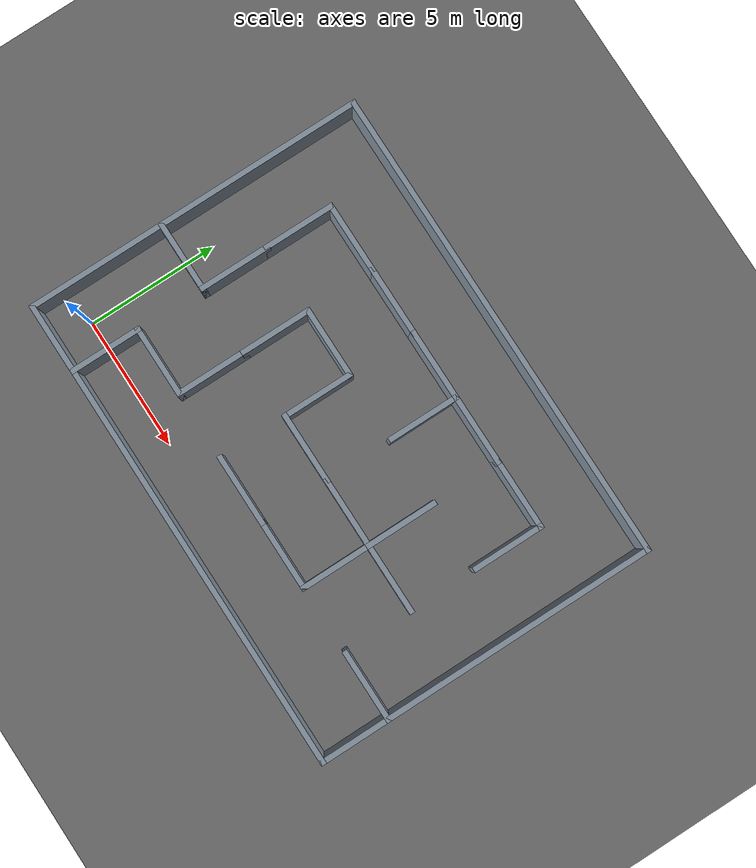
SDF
<?xml version="1.0"?>
<sdf version="1.8">
  <world name="maze">
    <plugin filename="gz-sim-physics-system" name="gz::sim::systems::Physics"/>
    <plugin filename="gz-sim-sensors-system" name="gz::sim::systems::Sensors"><render_engine>ogre2</render_engine></plugin>
    <plugin filename="gz-sim-scene-broadcaster-system" name="gz::sim::systems::SceneBroadcaster"/>
    <plugin filename="gz-sim-user-commands-system" name="gz::sim::systems::UserCommands"/>
    <scene><ambient>0.5 0.5 0.5 1</ambient><background>0.7 0.75 0.8 1</background></scene>
    <light type="directional" name="sun"><cast_shadows>true</cast_shadows><pose>0 0 12 0 0 0</pose>
      <diffuse>0.9 0.9 0.9 1</diffuse><direction>-0.4 0.3 -0.9</direction></light>
    <model name="ground"><static>true</static><link name="l">
      <collision name="c"><geometry><plane><normal>0 0 1</normal><size>60 60</size></plane></geometry></collision>
      <visual name="v"><geometry><plane><normal>0 0 1</normal><size>60 60</size></plane></geometry>
        <material><ambient>0.35 0.35 0.35 1</ambient><diffuse>0.4 0.4 0.4 1</diffuse></material></visual>
    </link></model>
    <model name="maze"><static>true</static>
      <link name="w0">
        <pose>6.500 5.200 0.750 0 0 0</pose>
        <collision name="c"><geometry><box><size>0.200 2.800 1.500</size></box></geometry></collision>
        <visual name="v"><geometry><box><size>0.200 2.800 1.500</size></box></geometry>
          <material><ambient>0.45 0.5 0.55 1</ambient><diffuse>0.5 0.55 0.6 1</diffuse></material></visual>
      </link>
      <link name="w1">
        <pose>2.600 9.100 0.750 0 0 0</pose>
        <collision name="c"><geometry><box><size>2.800 0.200 1.500</size></box></geometry></collision>
        <visual name="v"><geometry><box><size>2.800 0.200 1.500</size></box></geometry>
          <material><ambient>0.45 0.5 0.55 1</ambient><diffuse>0.5 0.55 0.6 1</diffuse></material></visual>
      </link>
      <link name="w2">
        <pose>2.600 1.300 0.750 0 0 0</pose>
        <collision name="c"><geometry><box><size>2.800 0.200 1.500</size></box></geometry></collision>
        <visual name="v"><geometry><box><size>2.800 0.200 1.500</size></box></geometry>
          <material><ambient>0.45 0.5 0.55 1</ambient><diffuse>0.5 0.55 0.6 1</diffuse></material></visual>
      </link>
      <link name="w3">
        <pose>3.900 5.200 0.750 0 0 0</pose>
        <collision name="c"><geometry><box><size>0.200 2.800 1.500</size></box></geometry></collision>
        <visual name="v"><geometry><box><size>0.200 2.800 1.500</size></box></geometry>
          <material><ambient>0.45 0.5 0.55 1</ambient><diffuse>0.5 0.55 0.6 1</diffuse></material></visual>
      </link>
      <link name="w4">
        <pose>7.800 1.300 0.750 0 0 0</pose>
        <collision name="c"><geometry><box><size>2.800 0.200 1.500</size></box></geometry></collision>
        <visual name="v"><geometry><box><size>2.800 0.200 1.500</size></box></geometry>
          <material><ambient>0.45 0.5 0.55 1</ambient><diffuse>0.5 0.55 0.6 1</diffuse></material></visual>
      </link>
      <link name="w5">
        <pose>14.300 7.800 0.750 0 0 0</pose>
        <collision name="c"><geometry><box><size>0.200 2.800 1.500</size></box></geometry></collision>
        <visual name="v"><geometry><box><size>0.200 2.800 1.500</size></box></geometry>
          <material><ambient>0.45 0.5 0.55 1</ambient><diffuse>0.5 0.55 0.6 1</diffuse></material></visual>
      </link>
      <link name="w6">
        <pose>5.200 6.500 0.750 0 0 0</pose>
        <collision name="c"><geometry><box><size>2.800 0.200 1.500</size></box></geometry></collision>
        <visual name="v"><geometry><box><size>2.800 0.200 1.500</size></box></geometry>
          <material><ambient>0.45 0.5 0.55 1</ambient><diffuse>0.5 0.55 0.6 1</diffuse></material></visual>
      </link>
      <link name="w7">
        <pose>13.000 9.100 0.750 0 0 0</pose>
        <collision name="c"><geometry><box><size>2.800 0.200 1.500</size></box></geometry></collision>
        <visual name="v"><geometry><box><size>2.800 0.200 1.500</size></box></geometry>
          <material><ambient>0.45 0.5 0.55 1</ambient><diffuse>0.5 0.55 0.6 1</diffuse></material></visual>
      </link>
      <link name="w8">
        <pose>9.100 7.800 0.750 0 0 0</pose>
        <collision name="c"><geometry><box><size>0.200 2.800 1.500</size></box></geometry></collision>
        <visual name="v"><geometry><box><size>0.200 2.800 1.500</size></box></geometry>
          <material><ambient>0.45 0.5 0.55 1</ambient><diffuse>0.5 0.55 0.6 1</diffuse></material></visual>
      </link>
      <link name="w9">
        <pose>7.800 9.100 0.750 0 0 0</pose>
        <collision name="c"><geometry><box><size>2.800 0.200 1.500</size></box></geometry></collision>
        <visual name="v"><geometry><box><size>2.800 0.200 1.500</size></box></geometry>
          <material><ambient>0.45 0.5 0.55 1</ambient><diffuse>0.5 0.55 0.6 1</diffuse></material></visual>
      </link>
      <link name="w10">
        <pose>1.300 7.800 0.750 0 0 0</pose>
        <collision name="c"><geometry><box><size>0.200 2.800 1.500</size></box></geometry></collision>
        <visual name="v"><geometry><box><size>0.200 2.800 1.500</size></box></geometry>
          <material><ambient>0.45 0.5 0.55 1</ambient><diffuse>0.5 0.55 0.6 1</diffuse></material></visual>
      </link>
      <link name="w11">
        <pose>11.700 5.200 0.750 0 0 0</pose>
        <collision name="c"><geometry><box><size>0.200 2.800 1.500</size></box></geometry></collision>
        <visual name="v"><geometry><box><size>0.200 2.800 1.500</size></box></geometry>
          <material><ambient>0.45 0.5 0.55 1</ambient><diffuse>0.5 0.55 0.6 1</diffuse></material></visual>
      </link>
      <link name="w12">
        <pose>0.000 3.900 0.750 0 0 0</pose>
        <collision name="c"><geometry><box><size>2.800 0.200 1.500</size></box></geometry></collision>
        <visual name="v"><geometry><box><size>2.800 0.200 1.500</size></box></geometry>
          <material><ambient>0.45 0.5 0.55 1</ambient><diffuse>0.5 0.55 0.6 1</diffuse></material></visual>
      </link>
      <link name="w13">
        <pose>7.800 3.900 0.750 0 0 0</pose>
        <collision name="c"><geometry><box><size>2.800 0.200 1.500</size></box></geometry></collision>
        <visual name="v"><geometry><box><size>2.800 0.200 1.500</size></box></geometry>
          <material><ambient>0.45 0.5 0.55 1</ambient><diffuse>0.5 0.55 0.6 1</diffuse></material></visual>
      </link>
      <link name="w14">
        <pose>13.000 3.900 0.750 0 0 0</pose>
        <collision name="c"><geometry><box><size>2.800 0.200 1.500</size></box></geometry></collision>
        <visual name="v"><geometry><box><size>2.800 0.200 1.500</size></box></geometry>
          <material><ambient>0.45 0.5 0.55 1</ambient><diffuse>0.5 0.55 0.6 1</diffuse></material></visual>
      </link>
      <link name="w15">
        <pose>10.400 9.100 0.750 0 0 0</pose>
        <collision name="c"><geometry><box><size>2.800 0.200 1.500</size></box></geometry></collision>
        <visual name="v"><geometry><box><size>2.800 0.200 1.500</size></box></geometry>
          <material><ambient>0.45 0.5 0.55 1</ambient><diffuse>0.5 0.55 0.6 1</diffuse></material></visual>
      </link>
      <link name="w16">
        <pose>15.600 1.300 0.750 0 0 0</pose>
        <collision name="c"><geometry><box><size>2.800 0.200 1.500</size></box></geometry></collision>
        <visual name="v"><geometry><box><size>2.800 0.200 1.500</size></box></geometry>
          <material><ambient>0.45 0.5 0.55 1</ambient><diffuse>0.5 0.55 0.6 1</diffuse></material></visual>
      </link>
      <link name="w17">
        <pose>1.300 0.000 0.750 0 0 0</pose>
        <collision name="c"><geometry><box><size>0.200 2.800 1.500</size></box></geometry></collision>
        <visual name="v"><geometry><box><size>0.200 2.800 1.500</size></box></geometry>
          <material><ambient>0.45 0.5 0.55 1</ambient><diffuse>0.5 0.55 0.6 1</diffuse></material></visual>
      </link>
      <link name="w18">
        <pose>1.300 5.200 0.750 0 0 0</pose>
        <collision name="c"><geometry><box><size>0.200 2.800 1.500</size></box></geometry></collision>
        <visual name="v"><geometry><box><size>0.200 2.800 1.500</size></box></geometry>
          <material><ambient>0.45 0.5 0.55 1</ambient><diffuse>0.5 0.55 0.6 1</diffuse></material></visual>
      </link>
      <link name="w19">
        <pose>10.400 1.300 0.750 0 0 0</pose>
        <collision name="c"><geometry><box><size>2.800 0.200 1.500</size></box></geometry></collision>
        <visual name="v"><geometry><box><size>2.800 0.200 1.500</size></box></geometry>
          <material><ambient>0.45 0.5 0.55 1</ambient><diffuse>0.5 0.55 0.6 1</diffuse></material></visual>
      </link>
      <link name="w20">
        <pose>3.900 2.600 0.750 0 0 0</pose>
        <collision name="c"><geometry><box><size>0.200 2.800 1.500</size></box></geometry></collision>
        <visual name="v"><geometry><box><size>0.200 2.800 1.500</size></box></geometry>
          <material><ambient>0.45 0.5 0.55 1</ambient><diffuse>0.5 0.55 0.6 1</diffuse></material></visual>
      </link>
      <link name="w21">
        <pose>10.400 3.900 0.750 0 0 0</pose>
        <collision name="c"><geometry><box><size>2.800 0.200 1.500</size></box></geometry></collision>
        <visual name="v"><geometry><box><size>2.800 0.200 1.500</size></box></geometry>
          <material><ambient>0.45 0.5 0.55 1</ambient><diffuse>0.5 0.55 0.6 1</diffuse></material></visual>
      </link>
      <link name="w22">
        <pose>11.700 2.600 0.750 0 0 0</pose>
        <collision name="c"><geometry><box><size>0.200 2.800 1.500</size></box></geometry></collision>
        <visual name="v"><geometry><box><size>0.200 2.800 1.500</size></box></geometry>
          <material><ambient>0.45 0.5 0.55 1</ambient><diffuse>0.5 0.55 0.6 1</diffuse></material></visual>
      </link>
      <link name="w23">
        <pose>5.200 9.100 0.750 0 0 0</pose>
        <collision name="c"><geometry><box><size>2.800 0.200 1.500</size></box></geometry></collision>
        <visual name="v"><geometry><box><size>2.800 0.200 1.500</size></box></geometry>
          <material><ambient>0.45 0.5 0.55 1</ambient><diffuse>0.5 0.55 0.6 1</diffuse></material></visual>
      </link>
      <link name="w24">
        <pose>7.800 -1.300 0.750 0 0 0</pose>
        <collision name="c"><geometry><box><size>18.400 0.200 1.500</size></box></geometry></collision>
        <visual name="v"><geometry><box><size>18.400 0.200 1.500</size></box></geometry>
          <material><ambient>0.45 0.5 0.55 1</ambient><diffuse>0.5 0.55 0.6 1</diffuse></material></visual>
      </link>
      <link name="w25">
        <pose>7.800 11.700 0.750 0 0 0</pose>
        <collision name="c"><geometry><box><size>18.400 0.200 1.500</size></box></geometry></collision>
        <visual name="v"><geometry><box><size>18.400 0.200 1.500</size></box></geometry>
          <material><ambient>0.45 0.5 0.55 1</ambient><diffuse>0.5 0.55 0.6 1</diffuse></material></visual>
      </link>
      <link name="w26">
        <pose>-1.300 5.200 0.750 0 0 0</pose>
        <collision name="c"><geometry><box><size>0.200 13.200 1.500</size></box></geometry></collision>
        <visual name="v"><geometry><box><size>0.200 13.200 1.500</size></box></geometry>
          <material><ambient>0.45 0.5 0.55 1</ambient><diffuse>0.5 0.55 0.6 1</diffuse></material></visual>
      </link>
      <link name="w27">
        <pose>16.900 5.200 0.750 0 0 0</pose>
        <collision name="c"><geometry><box><size>0.200 13.200 1.500</size></box></geometry></collision>
        <visual name="v"><geometry><box><size>0.200 13.200 1.500</size></box></geometry>
          <material><ambient>0.45 0.5 0.55 1</ambient><diffuse>0.5 0.55 0.6 1</diffuse></material></visual>
      </link>
    </model>
  </world>
</sdf>
